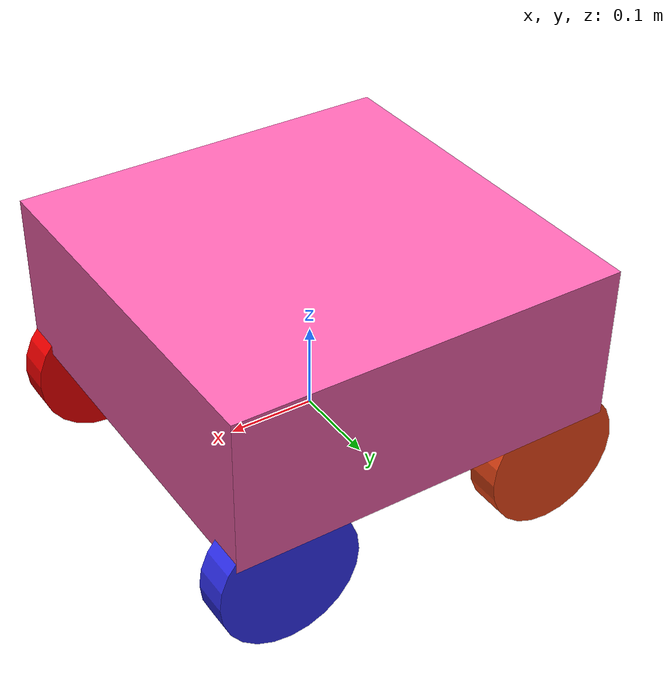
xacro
<?xml version="1.0"?>
<robot xmlns:xacro="http://www.ros.org/wiki/xacro" >

    <material name="white">
        <color rgba="1 1 1 1" />
    </material>

    <material name="orange">
        <color rgba="1 0.3 0.1 1"/>
    </material>

    <material name="blue">
        <color rgba="0.2 0.2 1 1"/>
    </material>

    <material name="black">
        <color rgba="0 0 0 1"/>
    </material>

    <material name="red">
        <color rgba="1 0 0 1"/>
    </material>

    <material name="green">
        <color rgba="0 1 0 1" />
    </material>

    <material name="gray">
        <color rgba="0.5 0.5 0.5 1" />
    </material>

    <material name="pink">
        <color rgba="1 0.4 0.7 1" />
    </material>

    <!-- BASE LINK -->

    <link name="base_link">
    </link>

    <!-- BASE_FOOTPRINT LINK -->
    <joint name="base_footprint_joint" type="fixed">
        <parent link="base_link"/>
        <child link="base_footprint"/>
        <origin xyz="0 0 0" rpy="0 0 0"/>
    </joint>

    <link name="base_footprint">
    </link>

    <joint name="chassis_joint" type="fixed">
        <parent link="base_link"/>
        <child link="chassis"/>
        <origin xyz="0 0 0"/>
    </joint>

    <!-- Chassis Link -->
    <link name="chassis">
        <visual>
            <origin xyz="0 0 0.13" rpy="0 0 0"/>
            <geometry>
                <box size="0.451 0.451 0.18"/>
                <!-- Hole geometry -->
                <cylinder length="0.15" radius="0.075"/>
            </geometry>
            <material name="pink"/>
        </visual>
        <collision>
            <origin xyz="0 0 0.13" rpy="0 0 0"/>
            <geometry>
                <box size="0.451 0.451 0.18"/>
                <!-- Hole geometry -->
                <cylinder length="0.15" radius="0.075"/>
            </geometry>
        </collision>
        <xacro:inertial_box mass="200.0" x="0.451" y="0.451" z="0.18">
            <origin xyz="0 0 0.13" rpy="0 0 0"/>
        </xacro:inertial_box>
    </link>
    <gazebo reference="chassis">
        <material>Gazebo/Wood   </material>
    </gazebo>

    <!-- Wheel Link -->
    <link name="front_left_wheel">
        <visual>
            <geometry>
                <cylinder length="0.04" radius="0.08" />
            </geometry>
            <material name="blue"/>
        </visual>
        <collision>
            <geometry>
                <cylinder length="0.04" radius="0.08" />
            </geometry>
        </collision>
        <xacro:inertial_cylinder mass="0.1" length="0.04" radius="0.08">
            <origin xyz="0 0 0" rpy="0 0 0"/>
        </xacro:inertial_cylinder>
    </link>
    <gazebo reference="front_left_wheel">
        <material>Gazebo/CloudySky </material>
    </gazebo>

    <link name="front_right_wheel">
        <visual>
            <geometry>
                <cylinder length="0.04" radius="0.08" />
            </geometry>
            <material name="red"/>
        </visual>
        <collision>
            <geometry>
                <cylinder length="0.04" radius="0.08" />
            </geometry>
        </collision>
        <xacro:inertial_cylinder mass="0.1" length="0.04" radius="0.08">
            <origin xyz="0 0 0" rpy="0 0 0"/>
        </xacro:inertial_cylinder>
    </link>
    <gazebo reference="front_right_wheel">
        <material>Gazebo/CloudySky </material>
    </gazebo>

    <link name="back_left_wheel">
        <visual>
            <geometry>
                <cylinder length="0.04" radius="0.08" />
            </geometry>
            <material name="orange"/>
        </visual>
        <collision>
            <geometry>
                <cylinder length="0.04" radius="0.08" />
            </geometry>
        </collision>
        <xacro:inertial_cylinder mass="0.1" length="0.04" radius="0.08">
            <origin xyz="0 0 0" rpy="0 0 0"/>
        </xacro:inertial_cylinder>
    </link>
    <gazebo reference="back_left_wheel">
        <material>Gazebo/CloudySky </material>
    </gazebo>

    <link name="back_right_wheel">
        <visual>
            <geometry>
                <cylinder length="0.04" radius="0.08" />
            </geometry>
            <material name="green"/>
        </visual>
        <collision>
            <geometry>
                <cylinder length="0.04" radius="0.08" />
            </geometry>
        </collision>
        <xacro:inertial_cylinder mass="0.1" length="0.04" radius="0.08">
            <origin xyz="0 0 0" rpy="0 0 0"/>
        </xacro:inertial_cylinder>
    </link>
    <gazebo reference="back_right_wheel">
        <material>Gazebo/CloudySky </material>
    </gazebo>

    <!-- Wheel Joint -->
    <!-- FRONT LEFT WHEEL -->
    <joint name="front_left_wheel_joint" type="continuous">
        <parent link="base_link"/>
        <child link="front_left_wheel"/>
        <origin xyz="0.165 0.205 0" rpy="-${pi/2} 0 0"/>
        <axis xyz="0 0 1"/>
    </joint>

    <!-- FRONT RIGHT WHEEL -->
    <joint name="front_right_wheel_joint" type="continuous">
        <parent link="base_link"/>
        <child link="front_right_wheel"/>
        <origin xyz="0.165 -0.205 0" rpy="${pi/2} 0 0"/>
        <axis xyz="0 0 -1"/>
    </joint>

    <!-- BACK LEFT WHEEL -->
    <joint name="back_left_wheel_joint" type="continuous">
        <parent link="base_link"/>
        <child link="back_left_wheel"/>
        <origin xyz="-0.165 0.205 0" rpy="-${pi/2} 0 0"/>
        <axis xyz="0 0 1"/>
    </joint>

    <!-- BACK RIGHT WHEEL -->
    <joint name="back_right_wheel_joint" type="continuous">
        <parent link="base_link"/>
        <child link="back_right_wheel"/>
        <origin xyz="-0.165 -0.205 0" rpy="${pi/2} 0 0"/>
        <axis xyz="0 0 -1"/>
    </joint>

</robot>
